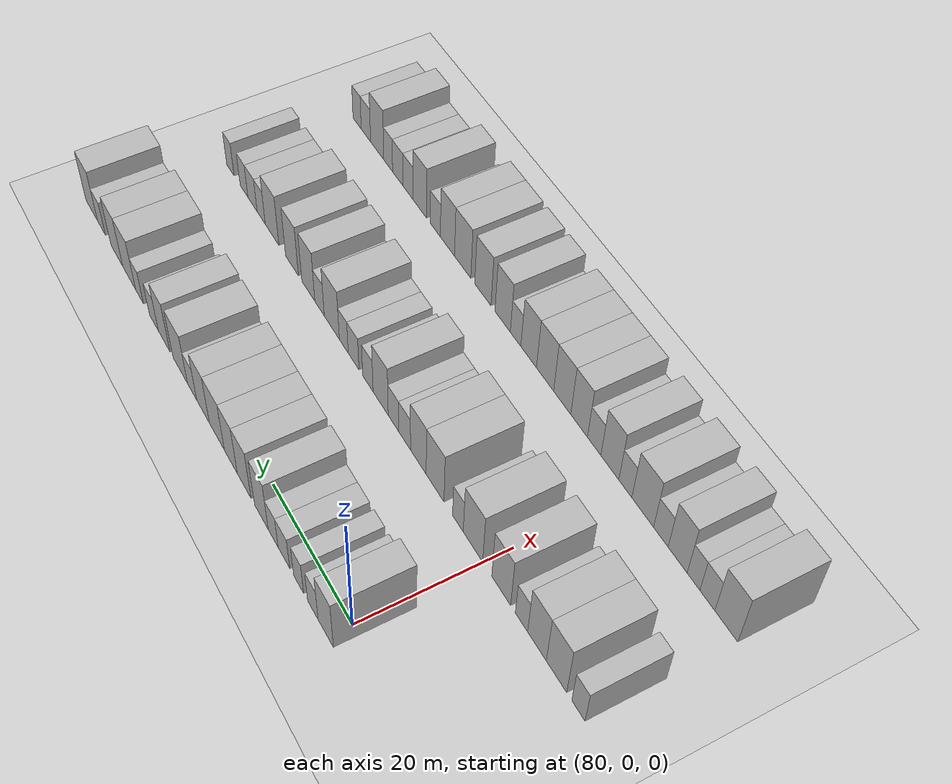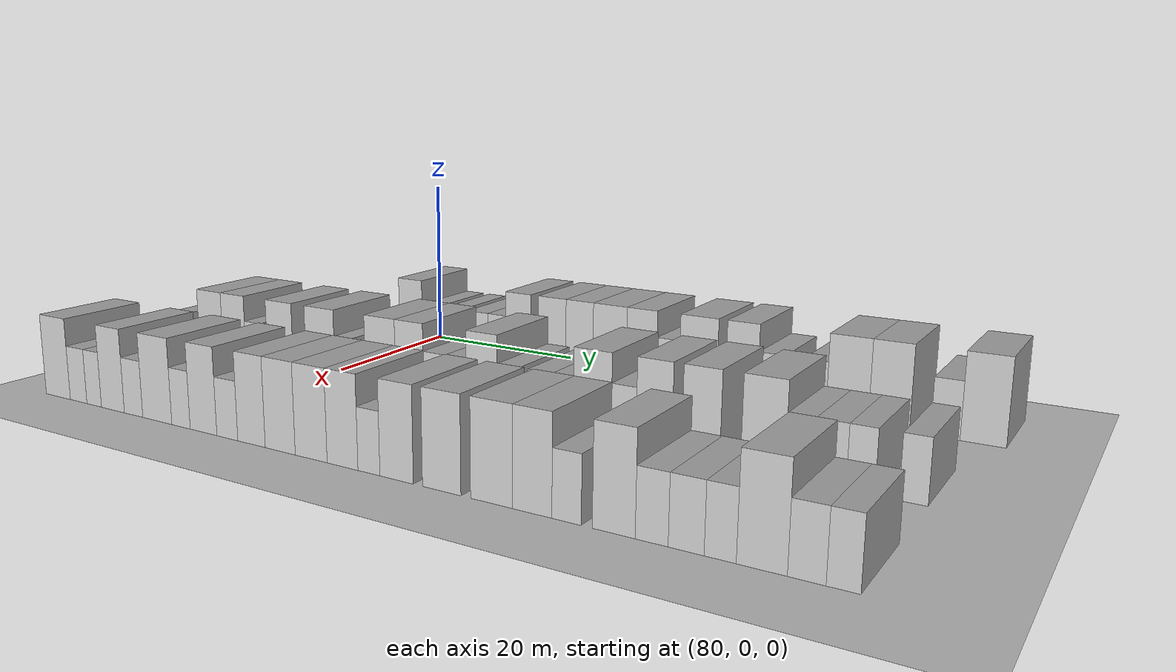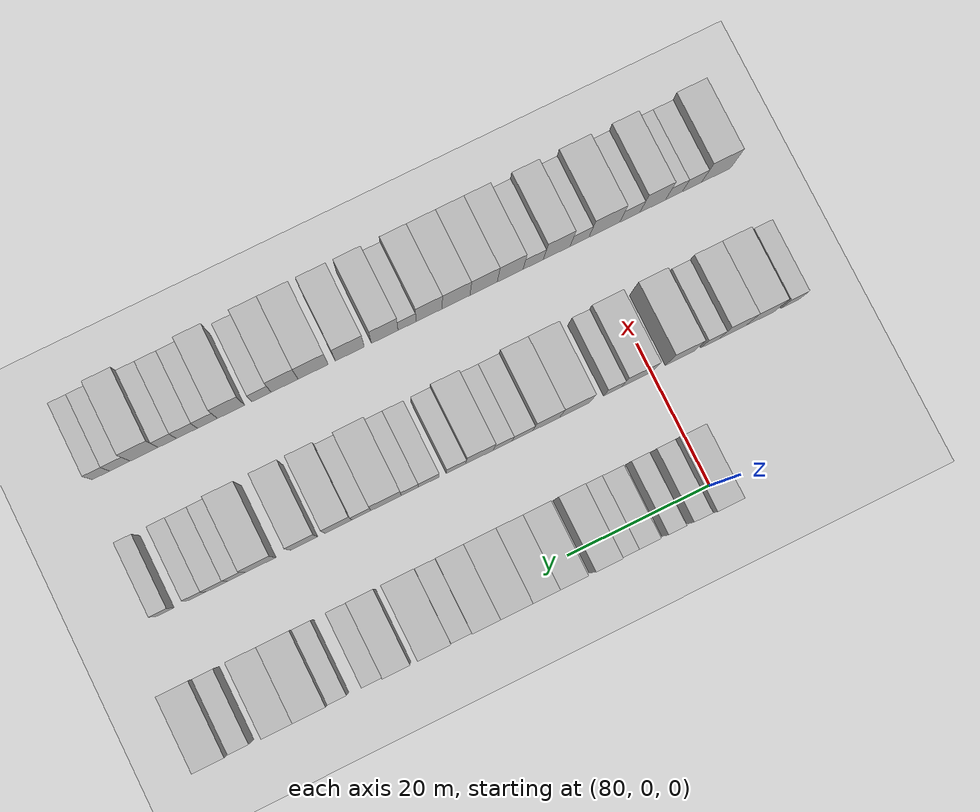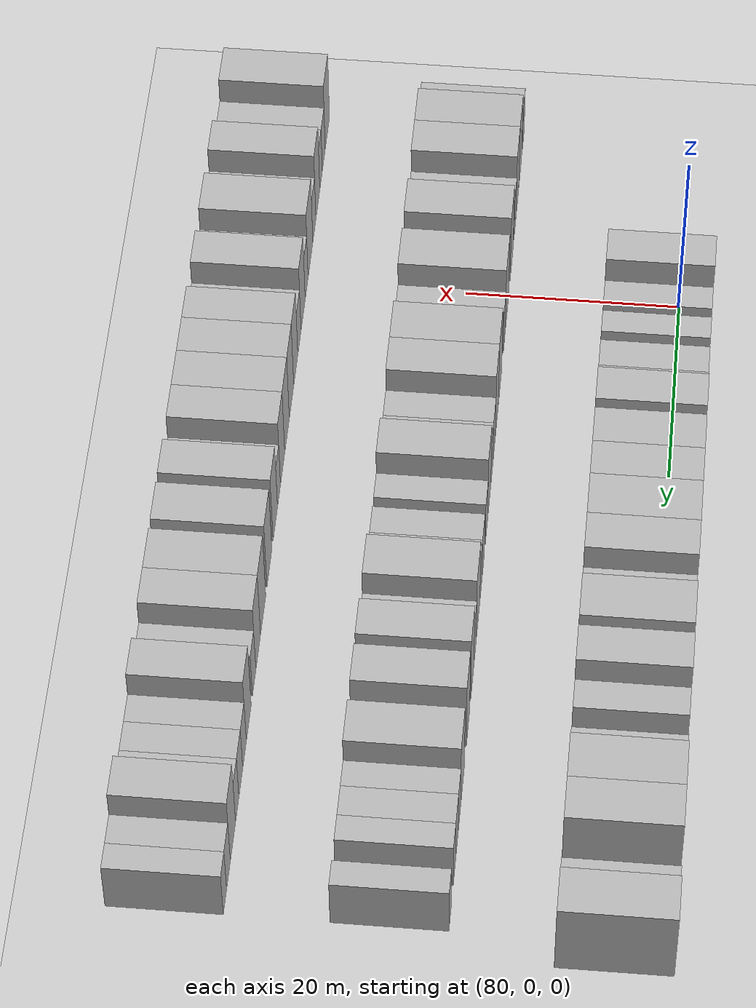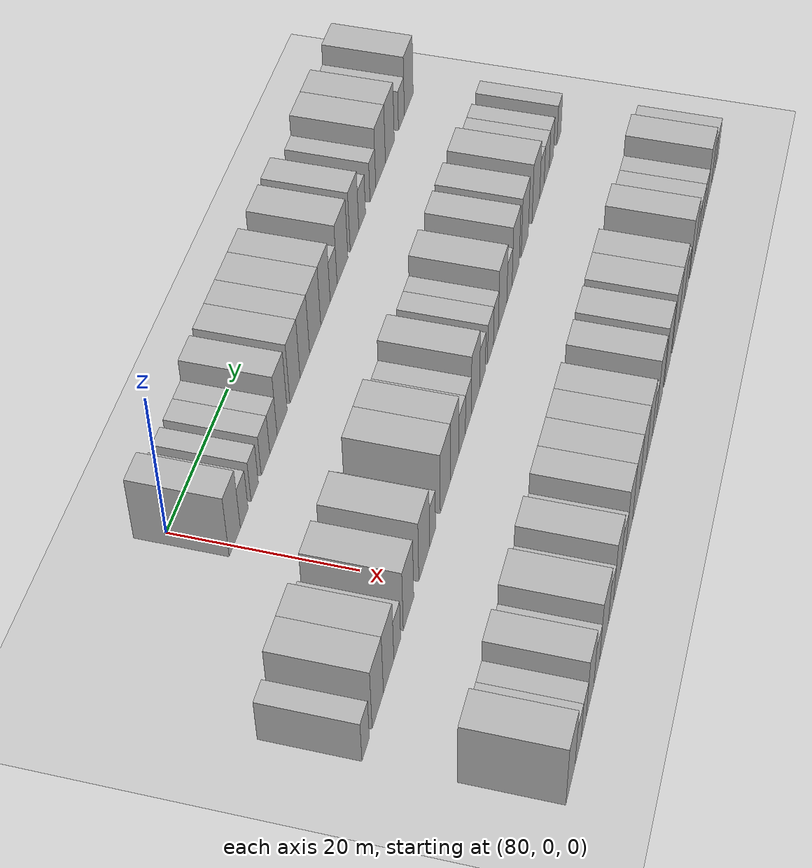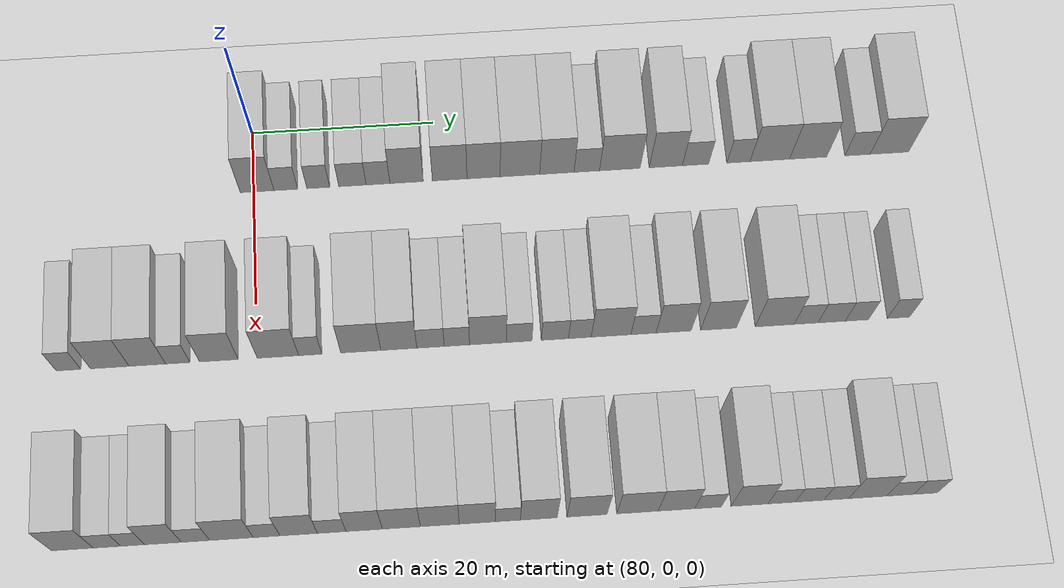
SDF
<sdf version="1.6">
 <world name="default">
  <include>
   <name>ground_plane_2</name>
   <uri>model://HANNAS_ground_plane</uri>
   <pose>100 0 0  0 0 0</pose>
  </include>
  <model name="building_609">
   <static>1</static>
   <pose>82.0000 0.4209 0 0.000000 0.000000 0.000000</pose>
   <link name="link">
    <pose>0 0 4.50 0 0 0</pose>
    <collision name="collision"><geometry><box><size>10.0000 3.6747 9.0000</size></box></geometry></collision>
    <visual name="visual">
     <cast_shadows>0</cast_shadows>
     <geometry><box><size>10.0000 3.6747 9.0000</size></box></geometry>
     <material>
      <script>
       <uri>model://HANNAS_wall/materials/scripts</uri>
       <uri>model://HANNAS_wall/materials/textures</uri>
       <name>vrc/HANNAS_wall</name>
      </script>
     </material>
    </visual>
   </link>
  </model>
  <model name="building_610">
   <static>1</static>
   <pose>82.0000 3.5471 0 0.000000 0.000000 0.000000</pose>
   <link name="link">
    <pose>0 0 3.00 0 0 0</pose>
    <collision name="collision"><geometry><box><size>10.0000 2.5777 6.0000</size></box></geometry></collision>
    <visual name="visual">
     <cast_shadows>0</cast_shadows>
     <geometry><box><size>10.0000 2.5777 6.0000</size></box></geometry>
     <material>
      <script>
       <uri>model://HANNAS_wall/materials/scripts</uri>
       <uri>model://HANNAS_wall/materials/textures</uri>
       <name>vrc/HANNAS_wall</name>
      </script>
     </material>
    </visual>
   </link>
  </model>
  <model name="building_611">
   <static>1</static>
   <pose>82.0000 7.0782 0 0.000000 0.000000 0.000000</pose>
   <link name="link">
    <pose>0 0 3.00 0 0 0</pose>
    <collision name="collision"><geometry><box><size>10.0000 2.4844 6.0000</size></box></geometry></collision>
    <visual name="visual">
     <cast_shadows>0</cast_shadows>
     <geometry><box><size>10.0000 2.4844 6.0000</size></box></geometry>
     <material>
      <script>
       <uri>model://HANNAS_wall/materials/scripts</uri>
       <uri>model://HANNAS_wall/materials/textures</uri>
       <name>vrc/HANNAS_wall</name>
      </script>
     </material>
    </visual>
   </link>
  </model>
  <model name="building_612">
   <static>1</static>
   <pose>82.0000 10.8094 0 0.000000 0.000000 0.000000</pose>
   <link name="link">
    <pose>0 0 3.00 0 0 0</pose>
    <collision name="collision"><geometry><box><size>10.0000 2.9780 6.0000</size></box></geometry></collision>
    <visual name="visual">
     <cast_shadows>0</cast_shadows>
     <geometry><box><size>10.0000 2.9780 6.0000</size></box></geometry>
     <material>
      <script>
       <uri>model://HANNAS_wall/materials/scripts</uri>
       <uri>model://HANNAS_wall/materials/textures</uri>
       <name>vrc/HANNAS_wall</name>
      </script>
     </material>
    </visual>
   </link>
  </model>
  <model name="building_613">
   <static>1</static>
   <pose>82.0000 13.5994 0 0.000000 0.000000 0.000000</pose>
   <link name="link">
    <pose>0 0 3.00 0 0 0</pose>
    <collision name="collision"><geometry><box><size>10.0000 2.6020 6.0000</size></box></geometry></collision>
    <visual name="visual">
     <cast_shadows>0</cast_shadows>
     <geometry><box><size>10.0000 2.6020 6.0000</size></box></geometry>
     <material>
      <script>
       <uri>model://HANNAS_wall/materials/scripts</uri>
       <uri>model://HANNAS_wall/materials/textures</uri>
       <name>vrc/HANNAS_wall</name>
      </script>
     </material>
    </visual>
   </link>
  </model>
  <model name="building_614">
   <static>1</static>
   <pose>82.0000 16.7196 0 0.000000 0.000000 0.000000</pose>
   <link name="link">
    <pose>0 0 4.50 0 0 0</pose>
    <collision name="collision"><geometry><box><size>10.0000 3.6383 9.0000</size></box></geometry></collision>
    <visual name="visual">
     <cast_shadows>0</cast_shadows>
     <geometry><box><size>10.0000 3.6383 9.0000</size></box></geometry>
     <material>
      <script>
       <uri>model://HANNAS_wall/materials/scripts</uri>
       <uri>model://HANNAS_wall/materials/textures</uri>
       <name>vrc/HANNAS_wall</name>
      </script>
     </material>
    </visual>
   </link>
  </model>
  <model name="building_615">
   <static>1</static>
   <pose>82.0000 21.4267 0 0.000000 0.000000 0.000000</pose>
   <link name="link">
    <pose>0 0 4.50 0 0 0</pose>
    <collision name="collision"><geometry><box><size>10.0000 3.7760 9.0000</size></box></geometry></collision>
    <visual name="visual">
     <cast_shadows>0</cast_shadows>
     <geometry><box><size>10.0000 3.7760 9.0000</size></box></geometry>
     <material>
      <script>
       <uri>model://HANNAS_wall/materials/scripts</uri>
       <uri>model://HANNAS_wall/materials/textures</uri>
       <name>vrc/HANNAS_wall</name>
      </script>
     </material>
    </visual>
   </link>
  </model>
  <model name="building_616">
   <static>1</static>
   <pose>82.0000 25.1299 0 0.000000 0.000000 0.000000</pose>
   <link name="link">
    <pose>0 0 4.50 0 0 0</pose>
    <collision name="collision"><geometry><box><size>10.0000 3.6303 9.0000</size></box></geometry></collision>
    <visual name="visual">
     <cast_shadows>0</cast_shadows>
     <geometry><box><size>10.0000 3.6303 9.0000</size></box></geometry>
     <material>
      <script>
       <uri>model://HANNAS_wall/materials/scripts</uri>
       <uri>model://HANNAS_wall/materials/textures</uri>
       <name>vrc/HANNAS_wall</name>
      </script>
     </material>
    </visual>
   </link>
  </model>
  <model name="building_617">
   <static>1</static>
   <pose>82.0000 29.1147 0 0.000000 0.000000 0.000000</pose>
   <link name="link">
    <pose>0 0 4.50 0 0 0</pose>
    <collision name="collision"><geometry><box><size>10.0000 4.3392 9.0000</size></box></geometry></collision>
    <visual name="visual">
     <cast_shadows>0</cast_shadows>
     <geometry><box><size>10.0000 4.3392 9.0000</size></box></geometry>
     <material>
      <script>
       <uri>model://HANNAS_wall/materials/scripts</uri>
       <uri>model://HANNAS_wall/materials/textures</uri>
       <name>vrc/HANNAS_wall</name>
      </script>
     </material>
    </visual>
   </link>
  </model>
  <model name="building_618">
   <static>1</static>
   <pose>82.0000 33.1680 0 0.000000 0.000000 0.000000</pose>
   <link name="link">
    <pose>0 0 4.50 0 0 0</pose>
    <collision name="collision"><geometry><box><size>10.0000 3.7675 9.0000</size></box></geometry></collision>
    <visual name="visual">
     <cast_shadows>0</cast_shadows>
     <geometry><box><size>10.0000 3.7675 9.0000</size></box></geometry>
     <material>
      <script>
       <uri>model://HANNAS_wall/materials/scripts</uri>
       <uri>model://HANNAS_wall/materials/textures</uri>
       <name>vrc/HANNAS_wall</name>
      </script>
     </material>
    </visual>
   </link>
  </model>
  <model name="building_619">
   <static>1</static>
   <pose>82.0000 36.4488 0 0.000000 0.000000 0.000000</pose>
   <link name="link">
    <pose>0 0 3.00 0 0 0</pose>
    <collision name="collision"><geometry><box><size>10.0000 2.7941 6.0000</size></box></geometry></collision>
    <visual name="visual">
     <cast_shadows>0</cast_shadows>
     <geometry><box><size>10.0000 2.7941 6.0000</size></box></geometry>
     <material>
      <script>
       <uri>model://HANNAS_wall/materials/scripts</uri>
       <uri>model://HANNAS_wall/materials/textures</uri>
       <name>vrc/HANNAS_wall</name>
      </script>
     </material>
    </visual>
   </link>
  </model>
  <model name="building_620">
   <static>1</static>
   <pose>82.0000 40.0757 0 0.000000 0.000000 0.000000</pose>
   <link name="link">
    <pose>0 0 4.50 0 0 0</pose>
    <collision name="collision"><geometry><box><size>10.0000 4.4597 9.0000</size></box></geometry></collision>
    <visual name="visual">
     <cast_shadows>0</cast_shadows>
     <geometry><box><size>10.0000 4.4597 9.0000</size></box></geometry>
     <material>
      <script>
       <uri>model://HANNAS_wall/materials/scripts</uri>
       <uri>model://HANNAS_wall/materials/textures</uri>
       <name>vrc/HANNAS_wall</name>
      </script>
     </material>
    </visual>
   </link>
  </model>
  <model name="building_621">
   <static>1</static>
   <pose>82.0000 45.1335 0 0.000000 0.000000 0.000000</pose>
   <link name="link">
    <pose>0 0 4.50 0 0 0</pose>
    <collision name="collision"><geometry><box><size>10.0000 3.6559 9.0000</size></box></geometry></collision>
    <visual name="visual">
     <cast_shadows>0</cast_shadows>
     <geometry><box><size>10.0000 3.6559 9.0000</size></box></geometry>
     <material>
      <script>
       <uri>model://HANNAS_wall/materials/scripts</uri>
       <uri>model://HANNAS_wall/materials/textures</uri>
       <name>vrc/HANNAS_wall</name>
      </script>
     </material>
    </visual>
   </link>
  </model>
  <model name="building_622">
   <static>1</static>
   <pose>82.0000 48.4071 0 0.000000 0.000000 0.000000</pose>
   <link name="link">
    <pose>0 0 3.00 0 0 0</pose>
    <collision name="collision"><geometry><box><size>10.0000 2.8913 6.0000</size></box></geometry></collision>
    <visual name="visual">
     <cast_shadows>0</cast_shadows>
     <geometry><box><size>10.0000 2.8913 6.0000</size></box></geometry>
     <material>
      <script>
       <uri>model://HANNAS_wall/materials/scripts</uri>
       <uri>model://HANNAS_wall/materials/textures</uri>
       <name>vrc/HANNAS_wall</name>
      </script>
     </material>
    </visual>
   </link>
  </model>
  <model name="building_623">
   <static>1</static>
   <pose>82.0000 53.1315 0 0.000000 0.000000 0.000000</pose>
   <link name="link">
    <pose>0 0 3.00 0 0 0</pose>
    <collision name="collision"><geometry><box><size>10.0000 2.5575 6.0000</size></box></geometry></collision>
    <visual name="visual">
     <cast_shadows>0</cast_shadows>
     <geometry><box><size>10.0000 2.5575 6.0000</size></box></geometry>
     <material>
      <script>
       <uri>model://HANNAS_wall/materials/scripts</uri>
       <uri>model://HANNAS_wall/materials/textures</uri>
       <name>vrc/HANNAS_wall</name>
      </script>
     </material>
    </visual>
   </link>
  </model>
  <model name="building_624">
   <static>1</static>
   <pose>82.0000 56.5993 0 0.000000 0.000000 0.000000</pose>
   <link name="link">
    <pose>0 0 4.50 0 0 0</pose>
    <collision name="collision"><geometry><box><size>10.0000 4.3783 9.0000</size></box></geometry></collision>
    <visual name="visual">
     <cast_shadows>0</cast_shadows>
     <geometry><box><size>10.0000 4.3783 9.0000</size></box></geometry>
     <material>
      <script>
       <uri>model://HANNAS_wall/materials/scripts</uri>
       <uri>model://HANNAS_wall/materials/textures</uri>
       <name>vrc/HANNAS_wall</name>
      </script>
     </material>
    </visual>
   </link>
  </model>
  <model name="building_625">
   <static>1</static>
   <pose>82.0000 60.8409 0 0.000000 0.000000 0.000000</pose>
   <link name="link">
    <pose>0 0 4.50 0 0 0</pose>
    <collision name="collision"><geometry><box><size>10.0000 4.1048 9.0000</size></box></geometry></collision>
    <visual name="visual">
     <cast_shadows>0</cast_shadows>
     <geometry><box><size>10.0000 4.1048 9.0000</size></box></geometry>
     <material>
      <script>
       <uri>model://HANNAS_wall/materials/scripts</uri>
       <uri>model://HANNAS_wall/materials/textures</uri>
       <name>vrc/HANNAS_wall</name>
      </script>
     </material>
    </visual>
   </link>
  </model>
  <model name="building_626">
   <static>1</static>
   <pose>82.0000 66.2934 0 0.000000 0.000000 0.000000</pose>
   <link name="link">
    <pose>0 0 3.00 0 0 0</pose>
    <collision name="collision"><geometry><box><size>10.0000 2.8003 6.0000</size></box></geometry></collision>
    <visual name="visual">
     <cast_shadows>0</cast_shadows>
     <geometry><box><size>10.0000 2.8003 6.0000</size></box></geometry>
     <material>
      <script>
       <uri>model://HANNAS_wall/materials/scripts</uri>
       <uri>model://HANNAS_wall/materials/textures</uri>
       <name>vrc/HANNAS_wall</name>
      </script>
     </material>
    </visual>
   </link>
  </model>
  <model name="building_627">
   <static>1</static>
   <pose>82.0000 69.8217 0 0.000000 0.000000 0.000000</pose>
   <link name="link">
    <pose>0 0 4.50 0 0 0</pose>
    <collision name="collision"><geometry><box><size>10.0000 4.2563 9.0000</size></box></geometry></collision>
    <visual name="visual">
     <cast_shadows>0</cast_shadows>
     <geometry><box><size>10.0000 4.2563 9.0000</size></box></geometry>
     <material>
      <script>
       <uri>model://HANNAS_wall/materials/scripts</uri>
       <uri>model://HANNAS_wall/materials/textures</uri>
       <name>vrc/HANNAS_wall</name>
      </script>
     </material>
    </visual>
   </link>
  </model>
  <model name="building_779">
   <static>1</static>
   <pose>101.0000 -19.7242 0 0.000000 0.000000 0.000000</pose>
   <link name="link">
    <pose>0 0 3.00 0 0 0</pose>
    <collision name="collision"><geometry><box><size>10.0000 2.5722 6.0000</size></box></geometry></collision>
    <visual name="visual">
     <cast_shadows>0</cast_shadows>
     <geometry><box><size>10.0000 2.5722 6.0000</size></box></geometry>
     <material>
      <script>
       <uri>model://HANNAS_wall/materials/scripts</uri>
       <uri>model://HANNAS_wall/materials/textures</uri>
       <name>vrc/HANNAS_wall</name>
      </script>
     </material>
    </visual>
   </link>
  </model>
  <model name="building_780">
   <static>1</static>
   <pose>101.0000 -15.4132 0 0.000000 0.000000 0.000000</pose>
   <link name="link">
    <pose>0 0 4.50 0 0 0</pose>
    <collision name="collision"><geometry><box><size>10.0000 4.0498 9.0000</size></box></geometry></collision>
    <visual name="visual">
     <cast_shadows>0</cast_shadows>
     <geometry><box><size>10.0000 4.0498 9.0000</size></box></geometry>
     <material>
      <script>
       <uri>model://HANNAS_wall/materials/scripts</uri>
       <uri>model://HANNAS_wall/materials/textures</uri>
       <name>vrc/HANNAS_wall</name>
      </script>
     </material>
    </visual>
   </link>
  </model>
  <model name="building_781">
   <static>1</static>
   <pose>101.0000 -11.4712 0 0.000000 0.000000 0.000000</pose>
   <link name="link">
    <pose>0 0 4.50 0 0 0</pose>
    <collision name="collision"><geometry><box><size>10.0000 3.8343 9.0000</size></box></geometry></collision>
    <visual name="visual">
     <cast_shadows>0</cast_shadows>
     <geometry><box><size>10.0000 3.8343 9.0000</size></box></geometry>
     <material>
      <script>
       <uri>model://HANNAS_wall/materials/scripts</uri>
       <uri>model://HANNAS_wall/materials/textures</uri>
       <name>vrc/HANNAS_wall</name>
      </script>
     </material>
    </visual>
   </link>
  </model>
  <model name="building_782">
   <static>1</static>
   <pose>101.0000 -8.2738 0 0.000000 0.000000 0.000000</pose>
   <link name="link">
    <pose>0 0 3.00 0 0 0</pose>
    <collision name="collision"><geometry><box><size>10.0000 2.5605 6.0000</size></box></geometry></collision>
    <visual name="visual">
     <cast_shadows>0</cast_shadows>
     <geometry><box><size>10.0000 2.5605 6.0000</size></box></geometry>
     <material>
      <script>
       <uri>model://HANNAS_wall/materials/scripts</uri>
       <uri>model://HANNAS_wall/materials/textures</uri>
       <name>vrc/HANNAS_wall</name>
      </script>
     </material>
    </visual>
   </link>
  </model>
  <model name="building_783">
   <static>1</static>
   <pose>101.0000 -3.9644 0 0.000000 0.000000 0.000000</pose>
   <link name="link">
    <pose>0 0 4.50 0 0 0</pose>
    <collision name="collision"><geometry><box><size>10.0000 4.0582 9.0000</size></box></geometry></collision>
    <visual name="visual">
     <cast_shadows>0</cast_shadows>
     <geometry><box><size>10.0000 4.0582 9.0000</size></box></geometry>
     <material>
      <script>
       <uri>model://HANNAS_wall/materials/scripts</uri>
       <uri>model://HANNAS_wall/materials/textures</uri>
       <name>vrc/HANNAS_wall</name>
      </script>
     </material>
    </visual>
   </link>
  </model>
  <model name="building_784">
   <static>1</static>
   <pose>101.0000 2.2348 0 0.000000 0.000000 0.000000</pose>
   <link name="link">
    <pose>0 0 4.50 0 0 0</pose>
    <collision name="collision"><geometry><box><size>10.0000 4.3402 9.0000</size></box></geometry></collision>
    <visual name="visual">
     <cast_shadows>0</cast_shadows>
     <geometry><box><size>10.0000 4.3402 9.0000</size></box></geometry>
     <material>
      <script>
       <uri>model://HANNAS_wall/materials/scripts</uri>
       <uri>model://HANNAS_wall/materials/textures</uri>
       <name>vrc/HANNAS_wall</name>
      </script>
     </material>
    </visual>
   </link>
  </model>
  <model name="building_785">
   <static>1</static>
   <pose>101.0000 5.6258 0 0.000000 0.000000 0.000000</pose>
   <link name="link">
    <pose>0 0 3.00 0 0 0</pose>
    <collision name="collision"><geometry><box><size>10.0000 2.4418 6.0000</size></box></geometry></collision>
    <visual name="visual">
     <cast_shadows>0</cast_shadows>
     <geometry><box><size>10.0000 2.4418 6.0000</size></box></geometry>
     <material>
      <script>
       <uri>model://HANNAS_wall/materials/scripts</uri>
       <uri>model://HANNAS_wall/materials/textures</uri>
       <name>vrc/HANNAS_wall</name>
      </script>
     </material>
    </visual>
   </link>
  </model>
  <model name="building_786">
   <static>1</static>
   <pose>101.0000 10.9584 0 0.000000 0.000000 0.000000</pose>
   <link name="link">
    <pose>0 0 4.50 0 0 0</pose>
    <collision name="collision"><geometry><box><size>10.0000 4.2235 9.0000</size></box></geometry></collision>
    <visual name="visual">
     <cast_shadows>0</cast_shadows>
     <geometry><box><size>10.0000 4.2235 9.0000</size></box></geometry>
     <material>
      <script>
       <uri>model://HANNAS_wall/materials/scripts</uri>
       <uri>model://HANNAS_wall/materials/textures</uri>
       <name>vrc/HANNAS_wall</name>
      </script>
     </material>
    </visual>
   </link>
  </model>
  <model name="building_787">
   <static>1</static>
   <pose>101.0000 14.9649 0 0.000000 0.000000 0.000000</pose>
   <link name="link">
    <pose>0 0 4.50 0 0 0</pose>
    <collision name="collision"><geometry><box><size>10.0000 3.7894 9.0000</size></box></geometry></collision>
    <visual name="visual">
     <cast_shadows>0</cast_shadows>
     <geometry><box><size>10.0000 3.7894 9.0000</size></box></geometry>
     <material>
      <script>
       <uri>model://HANNAS_wall/materials/scripts</uri>
       <uri>model://HANNAS_wall/materials/textures</uri>
       <name>vrc/HANNAS_wall</name>
      </script>
     </material>
    </visual>
   </link>
  </model>
  <model name="building_788">
   <static>1</static>
   <pose>101.0000 18.3054 0 0.000000 0.000000 0.000000</pose>
   <link name="link">
    <pose>0 0 3.00 0 0 0</pose>
    <collision name="collision"><geometry><box><size>10.0000 2.8915 6.0000</size></box></geometry></collision>
    <visual name="visual">
     <cast_shadows>0</cast_shadows>
     <geometry><box><size>10.0000 2.8915 6.0000</size></box></geometry>
     <material>
      <script>
       <uri>model://HANNAS_wall/materials/scripts</uri>
       <uri>model://HANNAS_wall/materials/textures</uri>
       <name>vrc/HANNAS_wall</name>
      </script>
     </material>
    </visual>
   </link>
  </model>
  <model name="building_789">
   <static>1</static>
   <pose>101.0000 21.0841 0 0.000000 0.000000 0.000000</pose>
   <link name="link">
    <pose>0 0 3.00 0 0 0</pose>
    <collision name="collision"><geometry><box><size>10.0000 2.6659 6.0000</size></box></geometry></collision>
    <visual name="visual">
     <cast_shadows>0</cast_shadows>
     <geometry><box><size>10.0000 2.6659 6.0000</size></box></geometry>
     <material>
      <script>
       <uri>model://HANNAS_wall/materials/scripts</uri>
       <uri>model://HANNAS_wall/materials/textures</uri>
       <name>vrc/HANNAS_wall</name>
      </script>
     </material>
    </visual>
   </link>
  </model>
  <model name="building_790">
   <static>1</static>
   <pose>101.0000 24.3569 0 0.000000 0.000000 0.000000</pose>
   <link name="link">
    <pose>0 0 4.50 0 0 0</pose>
    <collision name="collision"><geometry><box><size>10.0000 3.8796 9.0000</size></box></geometry></collision>
    <visual name="visual">
     <cast_shadows>0</cast_shadows>
     <geometry><box><size>10.0000 3.8796 9.0000</size></box></geometry>
     <material>
      <script>
       <uri>model://HANNAS_wall/materials/scripts</uri>
       <uri>model://HANNAS_wall/materials/textures</uri>
       <name>vrc/HANNAS_wall</name>
      </script>
     </material>
    </visual>
   </link>
  </model>
  <model name="building_791">
   <static>1</static>
   <pose>101.0000 27.6531 0 0.000000 0.000000 0.000000</pose>
   <link name="link">
    <pose>0 0 3.00 0 0 0</pose>
    <collision name="collision"><geometry><box><size>10.0000 2.7127 6.0000</size></box></geometry></collision>
    <visual name="visual">
     <cast_shadows>0</cast_shadows>
     <geometry><box><size>10.0000 2.7127 6.0000</size></box></geometry>
     <material>
      <script>
       <uri>model://HANNAS_wall/materials/scripts</uri>
       <uri>model://HANNAS_wall/materials/textures</uri>
       <name>vrc/HANNAS_wall</name>
      </script>
     </material>
    </visual>
   </link>
  </model>
  <model name="building_792">
   <static>1</static>
   <pose>101.0000 31.4449 0 0.000000 0.000000 0.000000</pose>
   <link name="link">
    <pose>0 0 3.00 0 0 0</pose>
    <collision name="collision"><geometry><box><size>10.0000 2.8708 6.0000</size></box></geometry></collision>
    <visual name="visual">
     <cast_shadows>0</cast_shadows>
     <geometry><box><size>10.0000 2.8708 6.0000</size></box></geometry>
     <material>
      <script>
       <uri>model://HANNAS_wall/materials/scripts</uri>
       <uri>model://HANNAS_wall/materials/textures</uri>
       <name>vrc/HANNAS_wall</name>
      </script>
     </material>
    </visual>
   </link>
  </model>
  <model name="building_793">
   <static>1</static>
   <pose>101.0000 34.0827 0 0.000000 0.000000 0.000000</pose>
   <link name="link">
    <pose>0 0 3.00 0 0 0</pose>
    <collision name="collision"><geometry><box><size>10.0000 2.4048 6.0000</size></box></geometry></collision>
    <visual name="visual">
     <cast_shadows>0</cast_shadows>
     <geometry><box><size>10.0000 2.4048 6.0000</size></box></geometry>
     <material>
      <script>
       <uri>model://HANNAS_wall/materials/scripts</uri>
       <uri>model://HANNAS_wall/materials/textures</uri>
       <name>vrc/HANNAS_wall</name>
      </script>
     </material>
    </visual>
   </link>
  </model>
  <model name="building_794">
   <static>1</static>
   <pose>101.0000 37.3878 0 0.000000 0.000000 0.000000</pose>
   <link name="link">
    <pose>0 0 4.50 0 0 0</pose>
    <collision name="collision"><geometry><box><size>10.0000 4.2054 9.0000</size></box></geometry></collision>
    <visual name="visual">
     <cast_shadows>0</cast_shadows>
     <geometry><box><size>10.0000 4.2054 9.0000</size></box></geometry>
     <material>
      <script>
       <uri>model://HANNAS_wall/materials/scripts</uri>
       <uri>model://HANNAS_wall/materials/textures</uri>
       <name>vrc/HANNAS_wall</name>
      </script>
     </material>
    </visual>
   </link>
  </model>
  <model name="building_795">
   <static>1</static>
   <pose>101.0000 40.8262 0 0.000000 0.000000 0.000000</pose>
   <link name="link">
    <pose>0 0 3.00 0 0 0</pose>
    <collision name="collision"><geometry><box><size>10.0000 2.6715 6.0000</size></box></geometry></collision>
    <visual name="visual">
     <cast_shadows>0</cast_shadows>
     <geometry><box><size>10.0000 2.6715 6.0000</size></box></geometry>
     <material>
      <script>
       <uri>model://HANNAS_wall/materials/scripts</uri>
       <uri>model://HANNAS_wall/materials/textures</uri>
       <name>vrc/HANNAS_wall</name>
      </script>
     </material>
    </visual>
   </link>
  </model>
  <model name="building_796">
   <static>1</static>
   <pose>101.0000 44.0315 0 0.000000 0.000000 0.000000</pose>
   <link name="link">
    <pose>0 0 4.50 0 0 0</pose>
    <collision name="collision"><geometry><box><size>10.0000 3.7392 9.0000</size></box></geometry></collision>
    <visual name="visual">
     <cast_shadows>0</cast_shadows>
     <geometry><box><size>10.0000 3.7392 9.0000</size></box></geometry>
     <material>
      <script>
       <uri>model://HANNAS_wall/materials/scripts</uri>
       <uri>model://HANNAS_wall/materials/textures</uri>
       <name>vrc/HANNAS_wall</name>
      </script>
     </material>
    </visual>
   </link>
  </model>
  <model name="building_797">
   <static>1</static>
   <pose>101.0000 48.8055 0 0.000000 0.000000 0.000000</pose>
   <link name="link">
    <pose>0 0 4.50 0 0 0</pose>
    <collision name="collision"><geometry><box><size>10.0000 3.8086 9.0000</size></box></geometry></collision>
    <visual name="visual">
     <cast_shadows>0</cast_shadows>
     <geometry><box><size>10.0000 3.8086 9.0000</size></box></geometry>
     <material>
      <script>
       <uri>model://HANNAS_wall/materials/scripts</uri>
       <uri>model://HANNAS_wall/materials/textures</uri>
       <name>vrc/HANNAS_wall</name>
      </script>
     </material>
    </visual>
   </link>
  </model>
  <model name="building_798">
   <static>1</static>
   <pose>101.0000 54.7952 0 0.000000 0.000000 0.000000</pose>
   <link name="link">
    <pose>0 0 4.50 0 0 0</pose>
    <collision name="collision"><geometry><box><size>10.0000 4.1710 9.0000</size></box></geometry></collision>
    <visual name="visual">
     <cast_shadows>0</cast_shadows>
     <geometry><box><size>10.0000 4.1710 9.0000</size></box></geometry>
     <material>
      <script>
       <uri>model://HANNAS_wall/materials/scripts</uri>
       <uri>model://HANNAS_wall/materials/textures</uri>
       <name>vrc/HANNAS_wall</name>
      </script>
     </material>
    </visual>
   </link>
  </model>
  <model name="building_799">
   <static>1</static>
   <pose>101.0000 58.1535 0 0.000000 0.000000 0.000000</pose>
   <link name="link">
    <pose>0 0 3.00 0 0 0</pose>
    <collision name="collision"><geometry><box><size>10.0000 2.5456 6.0000</size></box></geometry></collision>
    <visual name="visual">
     <cast_shadows>0</cast_shadows>
     <geometry><box><size>10.0000 2.5456 6.0000</size></box></geometry>
     <material>
      <script>
       <uri>model://HANNAS_wall/materials/scripts</uri>
       <uri>model://HANNAS_wall/materials/textures</uri>
       <name>vrc/HANNAS_wall</name>
      </script>
     </material>
    </visual>
   </link>
  </model>
  <model name="building_800">
   <static>1</static>
   <pose>101.0000 60.8779 0 0.000000 0.000000 0.000000</pose>
   <link name="link">
    <pose>0 0 3.00 0 0 0</pose>
    <collision name="collision"><geometry><box><size>10.0000 2.9032 6.0000</size></box></geometry></collision>
    <visual name="visual">
     <cast_shadows>0</cast_shadows>
     <geometry><box><size>10.0000 2.9032 6.0000</size></box></geometry>
     <material>
      <script>
       <uri>model://HANNAS_wall/materials/scripts</uri>
       <uri>model://HANNAS_wall/materials/textures</uri>
       <name>vrc/HANNAS_wall</name>
      </script>
     </material>
    </visual>
   </link>
  </model>
  <model name="building_801">
   <static>1</static>
   <pose>101.0000 63.5658 0 0.000000 0.000000 0.000000</pose>
   <link name="link">
    <pose>0 0 3.00 0 0 0</pose>
    <collision name="collision"><geometry><box><size>10.0000 2.4726 6.0000</size></box></geometry></collision>
    <visual name="visual">
     <cast_shadows>0</cast_shadows>
     <geometry><box><size>10.0000 2.4726 6.0000</size></box></geometry>
     <material>
      <script>
       <uri>model://HANNAS_wall/materials/scripts</uri>
       <uri>model://HANNAS_wall/materials/textures</uri>
       <name>vrc/HANNAS_wall</name>
      </script>
     </material>
    </visual>
   </link>
  </model>
  <model name="building_802">
   <static>1</static>
   <pose>101.0000 68.0028 0 0.000000 0.000000 0.000000</pose>
   <link name="link">
    <pose>0 0 3.00 0 0 0</pose>
    <collision name="collision"><geometry><box><size>10.0000 2.4016 6.0000</size></box></geometry></collision>
    <visual name="visual">
     <cast_shadows>0</cast_shadows>
     <geometry><box><size>10.0000 2.4016 6.0000</size></box></geometry>
     <material>
      <script>
       <uri>model://HANNAS_wall/materials/scripts</uri>
       <uri>model://HANNAS_wall/materials/textures</uri>
       <name>vrc/HANNAS_wall</name>
      </script>
     </material>
    </visual>
   </link>
  </model>
  <model name="building_951">
   <static>1</static>
   <pose>120.0000 -18.9969 0 0.000000 0.000000 0.000000</pose>
   <link name="link">
    <pose>0 0 4.50 0 0 0</pose>
    <collision name="collision"><geometry><box><size>10.0000 4.1986 9.0000</size></box></geometry></collision>
    <visual name="visual">
     <cast_shadows>0</cast_shadows>
     <geometry><box><size>10.0000 4.1986 9.0000</size></box></geometry>
     <material>
      <script>
       <uri>model://HANNAS_wall/materials/scripts</uri>
       <uri>model://HANNAS_wall/materials/textures</uri>
       <name>vrc/HANNAS_wall</name>
      </script>
     </material>
    </visual>
   </link>
  </model>
  <model name="building_952">
   <static>1</static>
   <pose>120.0000 -15.5007 0 0.000000 0.000000 0.000000</pose>
   <link name="link">
    <pose>0 0 3.00 0 0 0</pose>
    <collision name="collision"><geometry><box><size>10.0000 2.7936 6.0000</size></box></geometry></collision>
    <visual name="visual">
     <cast_shadows>0</cast_shadows>
     <geometry><box><size>10.0000 2.7936 6.0000</size></box></geometry>
     <material>
      <script>
       <uri>model://HANNAS_wall/materials/scripts</uri>
       <uri>model://HANNAS_wall/materials/textures</uri>
       <name>vrc/HANNAS_wall</name>
      </script>
     </material>
    </visual>
   </link>
  </model>
  <model name="building_953">
   <static>1</static>
   <pose>120.0000 -12.8960 0 0.000000 0.000000 0.000000</pose>
   <link name="link">
    <pose>0 0 3.00 0 0 0</pose>
    <collision name="collision"><geometry><box><size>10.0000 2.4158 6.0000</size></box></geometry></collision>
    <visual name="visual">
     <cast_shadows>0</cast_shadows>
     <geometry><box><size>10.0000 2.4158 6.0000</size></box></geometry>
     <material>
      <script>
       <uri>model://HANNAS_wall/materials/scripts</uri>
       <uri>model://HANNAS_wall/materials/textures</uri>
       <name>vrc/HANNAS_wall</name>
      </script>
     </material>
    </visual>
   </link>
  </model>
  <model name="building_954">
   <static>1</static>
   <pose>120.0000 -9.8407 0 0.000000 0.000000 0.000000</pose>
   <link name="link">
    <pose>0 0 4.50 0 0 0</pose>
    <collision name="collision"><geometry><box><size>10.0000 3.6947 9.0000</size></box></geometry></collision>
    <visual name="visual">
     <cast_shadows>0</cast_shadows>
     <geometry><box><size>10.0000 3.6947 9.0000</size></box></geometry>
     <material>
      <script>
       <uri>model://HANNAS_wall/materials/scripts</uri>
       <uri>model://HANNAS_wall/materials/textures</uri>
       <name>vrc/HANNAS_wall</name>
      </script>
     </material>
    </visual>
   </link>
  </model>
  <model name="building_955">
   <static>1</static>
   <pose>120.0000 -6.5516 0 0.000000 0.000000 0.000000</pose>
   <link name="link">
    <pose>0 0 3.00 0 0 0</pose>
    <collision name="collision"><geometry><box><size>10.0000 2.8835 6.0000</size></box></geometry></collision>
    <visual name="visual">
     <cast_shadows>0</cast_shadows>
     <geometry><box><size>10.0000 2.8835 6.0000</size></box></geometry>
     <material>
      <script>
       <uri>model://HANNAS_wall/materials/scripts</uri>
       <uri>model://HANNAS_wall/materials/textures</uri>
       <name>vrc/HANNAS_wall</name>
      </script>
     </material>
    </visual>
   </link>
  </model>
  <model name="building_956">
   <static>1</static>
   <pose>120.0000 -2.9055 0 0.000000 0.000000 0.000000</pose>
   <link name="link">
    <pose>0 0 4.50 0 0 0</pose>
    <collision name="collision"><geometry><box><size>10.0000 4.4087 9.0000</size></box></geometry></collision>
    <visual name="visual">
     <cast_shadows>0</cast_shadows>
     <geometry><box><size>10.0000 4.4087 9.0000</size></box></geometry>
     <material>
      <script>
       <uri>model://HANNAS_wall/materials/scripts</uri>
       <uri>model://HANNAS_wall/materials/textures</uri>
       <name>vrc/HANNAS_wall</name>
      </script>
     </material>
    </visual>
   </link>
  </model>
  <model name="building_957">
   <static>1</static>
   <pose>120.0000 0.6486 0 0.000000 0.000000 0.000000</pose>
   <link name="link">
    <pose>0 0 3.00 0 0 0</pose>
    <collision name="collision"><geometry><box><size>10.0000 2.6994 6.0000</size></box></geometry></collision>
    <visual name="visual">
     <cast_shadows>0</cast_shadows>
     <geometry><box><size>10.0000 2.6994 6.0000</size></box></geometry>
     <material>
      <script>
       <uri>model://HANNAS_wall/materials/scripts</uri>
       <uri>model://HANNAS_wall/materials/textures</uri>
       <name>vrc/HANNAS_wall</name>
      </script>
     </material>
    </visual>
   </link>
  </model>
  <model name="building_958">
   <static>1</static>
   <pose>120.0000 3.8985 0 0.000000 0.000000 0.000000</pose>
   <link name="link">
    <pose>0 0 4.50 0 0 0</pose>
    <collision name="collision"><geometry><box><size>10.0000 3.8005 9.0000</size></box></geometry></collision>
    <visual name="visual">
     <cast_shadows>0</cast_shadows>
     <geometry><box><size>10.0000 3.8005 9.0000</size></box></geometry>
     <material>
      <script>
       <uri>model://HANNAS_wall/materials/scripts</uri>
       <uri>model://HANNAS_wall/materials/textures</uri>
       <name>vrc/HANNAS_wall</name>
      </script>
     </material>
    </visual>
   </link>
  </model>
  <model name="building_959">
   <static>1</static>
   <pose>120.0000 7.2431 0 0.000000 0.000000 0.000000</pose>
   <link name="link">
    <pose>0 0 3.00 0 0 0</pose>
    <collision name="collision"><geometry><box><size>10.0000 2.8888 6.0000</size></box></geometry></collision>
    <visual name="visual">
     <cast_shadows>0</cast_shadows>
     <geometry><box><size>10.0000 2.8888 6.0000</size></box></geometry>
     <material>
      <script>
       <uri>model://HANNAS_wall/materials/scripts</uri>
       <uri>model://HANNAS_wall/materials/textures</uri>
       <name>vrc/HANNAS_wall</name>
      </script>
     </material>
    </visual>
   </link>
  </model>
  <model name="building_960">
   <static>1</static>
   <pose>120.0000 10.5267 0 0.000000 0.000000 0.000000</pose>
   <link name="link">
    <pose>0 0 4.50 0 0 0</pose>
    <collision name="collision"><geometry><box><size>10.0000 3.6784 9.0000</size></box></geometry></collision>
    <visual name="visual">
     <cast_shadows>0</cast_shadows>
     <geometry><box><size>10.0000 3.6784 9.0000</size></box></geometry>
     <material>
      <script>
       <uri>model://HANNAS_wall/materials/scripts</uri>
       <uri>model://HANNAS_wall/materials/textures</uri>
       <name>vrc/HANNAS_wall</name>
      </script>
     </material>
    </visual>
   </link>
  </model>
  <model name="building_961">
   <static>1</static>
   <pose>120.0000 14.3005 0 0.000000 0.000000 0.000000</pose>
   <link name="link">
    <pose>0 0 4.50 0 0 0</pose>
    <collision name="collision"><geometry><box><size>10.0000 3.8693 9.0000</size></box></geometry></collision>
    <visual name="visual">
     <cast_shadows>0</cast_shadows>
     <geometry><box><size>10.0000 3.8693 9.0000</size></box></geometry>
     <material>
      <script>
       <uri>model://HANNAS_wall/materials/scripts</uri>
       <uri>model://HANNAS_wall/materials/textures</uri>
       <name>vrc/HANNAS_wall</name>
      </script>
     </material>
    </visual>
   </link>
  </model>
  <model name="building_962">
   <static>1</static>
   <pose>120.0000 18.2150 0 0.000000 0.000000 0.000000</pose>
   <link name="link">
    <pose>0 0 4.50 0 0 0</pose>
    <collision name="collision"><geometry><box><size>10.0000 3.9596 9.0000</size></box></geometry></collision>
    <visual name="visual">
     <cast_shadows>0</cast_shadows>
     <geometry><box><size>10.0000 3.9596 9.0000</size></box></geometry>
     <material>
      <script>
       <uri>model://HANNAS_wall/materials/scripts</uri>
       <uri>model://HANNAS_wall/materials/textures</uri>
       <name>vrc/HANNAS_wall</name>
      </script>
     </material>
    </visual>
   </link>
  </model>
  <model name="building_963">
   <static>1</static>
   <pose>120.0000 22.0361 0 0.000000 0.000000 0.000000</pose>
   <link name="link">
    <pose>0 0 4.50 0 0 0</pose>
    <collision name="collision"><geometry><box><size>10.0000 3.6826 9.0000</size></box></geometry></collision>
    <visual name="visual">
     <cast_shadows>0</cast_shadows>
     <geometry><box><size>10.0000 3.6826 9.0000</size></box></geometry>
     <material>
      <script>
       <uri>model://HANNAS_wall/materials/scripts</uri>
       <uri>model://HANNAS_wall/materials/textures</uri>
       <name>vrc/HANNAS_wall</name>
      </script>
     </material>
    </visual>
   </link>
  </model>
  <model name="building_964">
   <static>1</static>
   <pose>120.0000 25.1464 0 0.000000 0.000000 0.000000</pose>
   <link name="link">
    <pose>0 0 3.00 0 0 0</pose>
    <collision name="collision"><geometry><box><size>10.0000 2.5381 6.0000</size></box></geometry></collision>
    <visual name="visual">
     <cast_shadows>0</cast_shadows>
     <geometry><box><size>10.0000 2.5381 6.0000</size></box></geometry>
     <material>
      <script>
       <uri>model://HANNAS_wall/materials/scripts</uri>
       <uri>model://HANNAS_wall/materials/textures</uri>
       <name>vrc/HANNAS_wall</name>
      </script>
     </material>
    </visual>
   </link>
  </model>
  <model name="building_965">
   <static>1</static>
   <pose>120.0000 28.2906 0 0.000000 0.000000 0.000000</pose>
   <link name="link">
    <pose>0 0 4.50 0 0 0</pose>
    <collision name="collision"><geometry><box><size>10.0000 3.7503 9.0000</size></box></geometry></collision>
    <visual name="visual">
     <cast_shadows>0</cast_shadows>
     <geometry><box><size>10.0000 3.7503 9.0000</size></box></geometry>
     <material>
      <script>
       <uri>model://HANNAS_wall/materials/scripts</uri>
       <uri>model://HANNAS_wall/materials/textures</uri>
       <name>vrc/HANNAS_wall</name>
      </script>
     </material>
    </visual>
   </link>
  </model>
  <model name="building_966">
   <static>1</static>
   <pose>120.0000 33.2081 0 0.000000 0.000000 0.000000</pose>
   <link name="link">
    <pose>0 0 4.50 0 0 0</pose>
    <collision name="collision"><geometry><box><size>10.0000 4.0847 9.0000</size></box></geometry></collision>
    <visual name="visual">
     <cast_shadows>0</cast_shadows>
     <geometry><box><size>10.0000 4.0847 9.0000</size></box></geometry>
     <material>
      <script>
       <uri>model://HANNAS_wall/materials/scripts</uri>
       <uri>model://HANNAS_wall/materials/textures</uri>
       <name>vrc/HANNAS_wall</name>
      </script>
     </material>
    </visual>
   </link>
  </model>
  <model name="building_967">
   <static>1</static>
   <pose>120.0000 38.3682 0 0.000000 0.000000 0.000000</pose>
   <link name="link">
    <pose>0 0 4.50 0 0 0</pose>
    <collision name="collision"><geometry><box><size>10.0000 4.2355 9.0000</size></box></geometry></collision>
    <visual name="visual">
     <cast_shadows>0</cast_shadows>
     <geometry><box><size>10.0000 4.2355 9.0000</size></box></geometry>
     <material>
      <script>
       <uri>model://HANNAS_wall/materials/scripts</uri>
       <uri>model://HANNAS_wall/materials/textures</uri>
       <name>vrc/HANNAS_wall</name>
      </script>
     </material>
    </visual>
   </link>
  </model>
  <model name="building_968">
   <static>1</static>
   <pose>120.0000 42.3651 0 0.000000 0.000000 0.000000</pose>
   <link name="link">
    <pose>0 0 4.50 0 0 0</pose>
    <collision name="collision"><geometry><box><size>10.0000 3.7583 9.0000</size></box></geometry></collision>
    <visual name="visual">
     <cast_shadows>0</cast_shadows>
     <geometry><box><size>10.0000 3.7583 9.0000</size></box></geometry>
     <material>
      <script>
       <uri>model://HANNAS_wall/materials/scripts</uri>
       <uri>model://HANNAS_wall/materials/textures</uri>
       <name>vrc/HANNAS_wall</name>
      </script>
     </material>
    </visual>
   </link>
  </model>
  <model name="building_969">
   <static>1</static>
   <pose>120.0000 45.6059 0 0.000000 0.000000 0.000000</pose>
   <link name="link">
    <pose>0 0 3.00 0 0 0</pose>
    <collision name="collision"><geometry><box><size>10.0000 2.7232 6.0000</size></box></geometry></collision>
    <visual name="visual">
     <cast_shadows>0</cast_shadows>
     <geometry><box><size>10.0000 2.7232 6.0000</size></box></geometry>
     <material>
      <script>
       <uri>model://HANNAS_wall/materials/scripts</uri>
       <uri>model://HANNAS_wall/materials/textures</uri>
       <name>vrc/HANNAS_wall</name>
      </script>
     </material>
    </visual>
   </link>
  </model>
  <model name="building_970">
   <static>1</static>
   <pose>120.0000 49.8570 0 0.000000 0.000000 0.000000</pose>
   <link name="link">
    <pose>0 0 4.50 0 0 0</pose>
    <collision name="collision"><geometry><box><size>10.0000 3.7791 9.0000</size></box></geometry></collision>
    <visual name="visual">
     <cast_shadows>0</cast_shadows>
     <geometry><box><size>10.0000 3.7791 9.0000</size></box></geometry>
     <material>
      <script>
       <uri>model://HANNAS_wall/materials/scripts</uri>
       <uri>model://HANNAS_wall/materials/textures</uri>
       <name>vrc/HANNAS_wall</name>
      </script>
     </material>
    </visual>
   </link>
  </model>
  <model name="building_971">
   <static>1</static>
   <pose>120.0000 53.1437 0 0.000000 0.000000 0.000000</pose>
   <link name="link">
    <pose>0 0 3.00 0 0 0</pose>
    <collision name="collision"><geometry><box><size>10.0000 2.7944 6.0000</size></box></geometry></collision>
    <visual name="visual">
     <cast_shadows>0</cast_shadows>
     <geometry><box><size>10.0000 2.7944 6.0000</size></box></geometry>
     <material>
      <script>
       <uri>model://HANNAS_wall/materials/scripts</uri>
       <uri>model://HANNAS_wall/materials/textures</uri>
       <name>vrc/HANNAS_wall</name>
      </script>
     </material>
    </visual>
   </link>
  </model>
  <model name="building_972">
   <static>1</static>
   <pose>120.0000 56.0139 0 0.000000 0.000000 0.000000</pose>
   <link name="link">
    <pose>0 0 3.00 0 0 0</pose>
    <collision name="collision"><geometry><box><size>10.0000 2.9459 6.0000</size></box></geometry></collision>
    <visual name="visual">
     <cast_shadows>0</cast_shadows>
     <geometry><box><size>10.0000 2.9459 6.0000</size></box></geometry>
     <material>
      <script>
       <uri>model://HANNAS_wall/materials/scripts</uri>
       <uri>model://HANNAS_wall/materials/textures</uri>
       <name>vrc/HANNAS_wall</name>
      </script>
     </material>
    </visual>
   </link>
  </model>
  <model name="building_973">
   <static>1</static>
   <pose>120.0000 58.7577 0 0.000000 0.000000 0.000000</pose>
   <link name="link">
    <pose>0 0 3.00 0 0 0</pose>
    <collision name="collision"><geometry><box><size>10.0000 2.5418 6.0000</size></box></geometry></collision>
    <visual name="visual">
     <cast_shadows>0</cast_shadows>
     <geometry><box><size>10.0000 2.5418 6.0000</size></box></geometry>
     <material>
      <script>
       <uri>model://HANNAS_wall/materials/scripts</uri>
       <uri>model://HANNAS_wall/materials/textures</uri>
       <name>vrc/HANNAS_wall</name>
      </script>
     </material>
    </visual>
   </link>
  </model>
  <model name="building_974">
   <static>1</static>
   <pose>120.0000 61.9731 0 0.000000 0.000000 0.000000</pose>
   <link name="link">
    <pose>0 0 4.50 0 0 0</pose>
    <collision name="collision"><geometry><box><size>10.0000 3.8889 9.0000</size></box></geometry></collision>
    <visual name="visual">
     <cast_shadows>0</cast_shadows>
     <geometry><box><size>10.0000 3.8889 9.0000</size></box></geometry>
     <material>
      <script>
       <uri>model://HANNAS_wall/materials/scripts</uri>
       <uri>model://HANNAS_wall/materials/textures</uri>
       <name>vrc/HANNAS_wall</name>
      </script>
     </material>
    </visual>
   </link>
  </model>
  <model name="building_975">
   <static>1</static>
   <pose>120.0000 65.3261 0 0.000000 0.000000 0.000000</pose>
   <link name="link">
    <pose>0 0 3.00 0 0 0</pose>
    <collision name="collision"><geometry><box><size>10.0000 2.8171 6.0000</size></box></geometry></collision>
    <visual name="visual">
     <cast_shadows>0</cast_shadows>
     <geometry><box><size>10.0000 2.8171 6.0000</size></box></geometry>
     <material>
      <script>
       <uri>model://HANNAS_wall/materials/scripts</uri>
       <uri>model://HANNAS_wall/materials/textures</uri>
       <name>vrc/HANNAS_wall</name>
      </script>
     </material>
    </visual>
   </link>
  </model>
  <model name="building_976">
   <static>1</static>
   <pose>120.0000 67.9656 0 0.000000 0.000000 0.000000</pose>
   <link name="link">
    <pose>0 0 3.00 0 0 0</pose>
    <collision name="collision"><geometry><box><size>10.0000 2.4620 6.0000</size></box></geometry></collision>
    <visual name="visual">
     <cast_shadows>0</cast_shadows>
     <geometry><box><size>10.0000 2.4620 6.0000</size></box></geometry>
     <material>
      <script>
       <uri>model://HANNAS_wall/materials/scripts</uri>
       <uri>model://HANNAS_wall/materials/textures</uri>
       <name>vrc/HANNAS_wall</name>
      </script>
     </material>
    </visual>
   </link>
  </model>
 </world>
</sdf>
